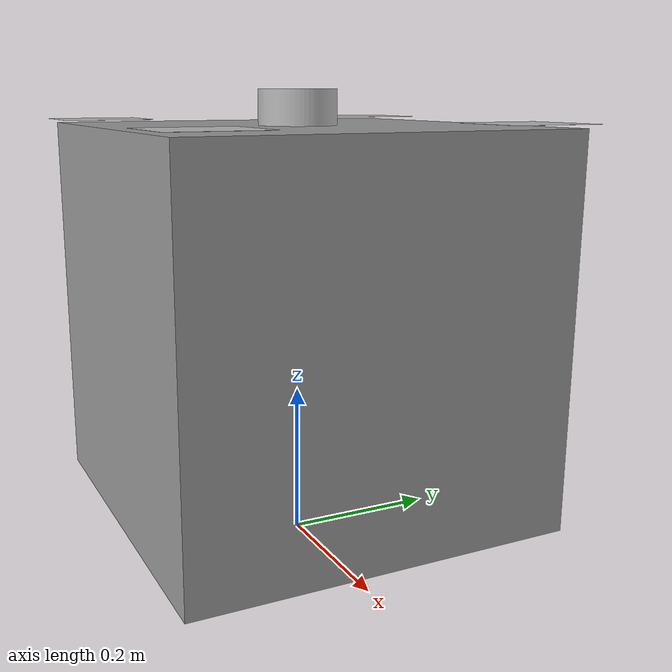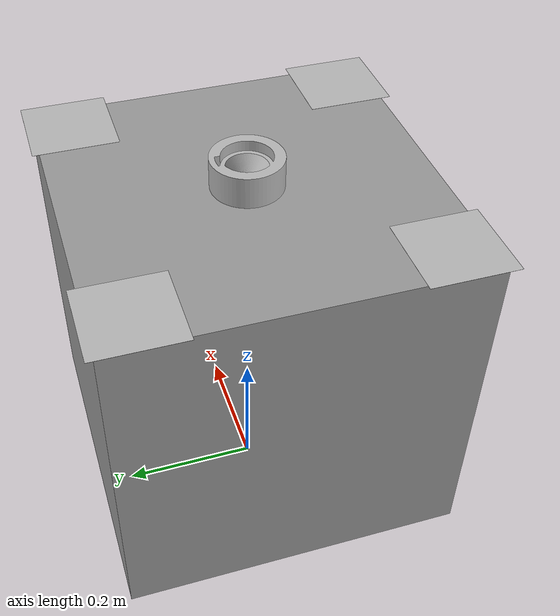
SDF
<?xml version="1.0"?>
<sdf version="1.7">
  <model name="docked_spacecraft">
    <static>false</static>

    <!--   CubeSat main body                   -->
    <link name="cube_sat_link">
      <pose>0 0 0.3 0 0 0</pose>
      <inertial>
        <mass>10</mass>
        <inertia>
          <ixx>1.66667</ixx>
          <ixy>0</ixy>
          <ixz>0</ixz>
          <iyy>1.66667</iyy>
          <iyz>0</iyz>
          <izz>1.66667</izz>
        </inertia>
      </inertial>
      <self_collide>false</self_collide>
      <enable_wind>false</enable_wind>
      <kinematic>false</kinematic>
      <gravity>false</gravity>

      <visual name="cube_visual">
        <geometry>
          <box><size>0.5 0.5 0.5</size></box>
        </geometry>
        <material>
          <script>
            <name>Gazebo/Grey</name>
            <uri>file://media/materials/scripts/gazebo.material</uri>
          </script>
          <ambient>0.3 0.3 0.3 1</ambient>
          <diffuse>0.7 0.7 0.7 1</diffuse>
          <specular>0.01 0.01 0.01 1</specular>
        </material>
      </visual>

      <!-- ArUco fiducials placed on the four top corners of the CubeSat -->
      <visual name="aruco_marker_0_visual">
        <pose>0.2 0.2 0.255 0 0 0</pose>
        <geometry>
          <plane>
            <size>0.12 0.12</size>
            <normal>0 0 1</normal>
          </plane>
        </geometry>
        <material>
          <script>
            <uri>model://docked_spacecraft/materials/scripts</uri>
            <uri>model://docked_spacecraft/materials/textures</uri>
            <name>aruco/marker0</name>
          </script>
        </material>
        <double_sided>true</double_sided>
      </visual>

      <visual name="aruco_marker_1_visual">
        <pose>-0.2 0.2 0.255 0 0 0</pose>
        <geometry>
          <plane>
            <size>0.12 0.12</size>
            <normal>0 0 1</normal>
          </plane>
        </geometry>
        <material>
          <script>
            <uri>model://docked_spacecraft/materials/scripts</uri>
            <uri>model://docked_spacecraft/materials/textures</uri>
            <name>aruco/marker1</name>
          </script>
        </material>
        <double_sided>true</double_sided>
      </visual>

      <visual name="aruco_marker_2_visual">
        <pose>0.2 -0.2 0.255 0 0 0</pose>
        <geometry>
          <plane>
            <size>0.12 0.12</size>
            <normal>0 0 1</normal>
          </plane>
        </geometry>
        <material>
          <script>
            <uri>model://docked_spacecraft/materials/scripts</uri>
            <uri>model://docked_spacecraft/materials/textures</uri>
            <name>aruco/marker2</name>
          </script>
        </material>
        <double_sided>true</double_sided>
      </visual>

      <visual name="aruco_marker_3_visual">
        <pose>-0.2 -0.2 0.255 0 0 0</pose>
        <geometry>
          <plane>
            <size>0.12 0.12</size>
            <normal>0 0 1</normal>
          </plane>
        </geometry>
        <material>
          <script>
            <uri>model://docked_spacecraft/materials/scripts</uri>
            <uri>model://docked_spacecraft/materials/textures</uri>
            <name>aruco/marker3</name>
          </script>
        </material>
        <double_sided>true</double_sided>
      </visual>

      <collision name="cube_collision">
        <geometry>
          <box><size>0.5 0.5 0.5</size></box>
        </geometry>
        <surface>
          <friction>
            <ode>
              <mu>0.1</mu>
              <mu2>0.1</mu2>
            </ode>
          </friction>
          <bounce><restitution_coefficient>0</restitution_coefficient></bounce>
          <contact><ode><kp>1e13</kp><kd>1</kd></ode></contact>
        </surface>
      </collision>
    </link>

    <!--   Docking Ring (Notch Ring Target)     -->
    <link name="notch_ring_link">
      <pose>0 0 0.55 0 0 0</pose> <!-- Adjust Z to place it just in front -->
      <gravity>false</gravity>
      <self_collide>false</self_collide>
      <kinematic>false</kinematic>

      <inertial>
        <mass>10.0</mass>
        <inertia>
          <ixx>0.012169</ixx>
          <iyy>0.012239</iyy>
          <izz>0.011722</izz>
          <ixy>0</ixy><ixz>0</ixz><iyz>0</iyz>
        </inertia>
      </inertial>

      <visual name="notch_ring_visual">
        <geometry>
          <mesh>
            <uri>model://notch_ring/meshes/notch_ringdae.dae</uri>
            <scale>1 1 1</scale>
          </mesh>
        </geometry>
        <cast_shadows>false</cast_shadows>
      </visual>

      <collision name="notch_ring_collision">
        <geometry>
          <mesh>
            <uri>model://notch_ring/meshes/notch_ringdae.dae</uri>
            <scale>1 1 1</scale>
          </mesh>
        </geometry>
        <surface>
          <contact><ode/></contact>
          <friction><ode/></friction>
        </surface>
      </collision>
    </link>

    <!--   Fixed Joint between both parts       -->
    <joint name="fixed_joint_cubesat_to_ring" type="fixed">
      <parent>cube_sat_link</parent>
      <child>notch_ring_link</child>
    </joint>

  </model>
</sdf>
